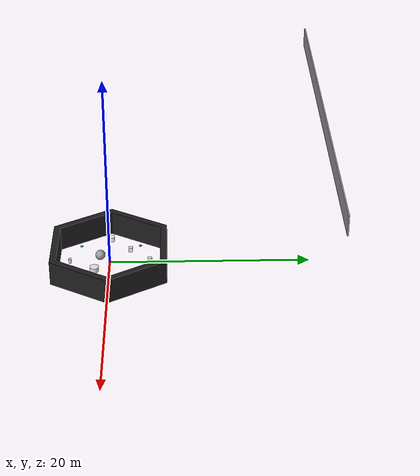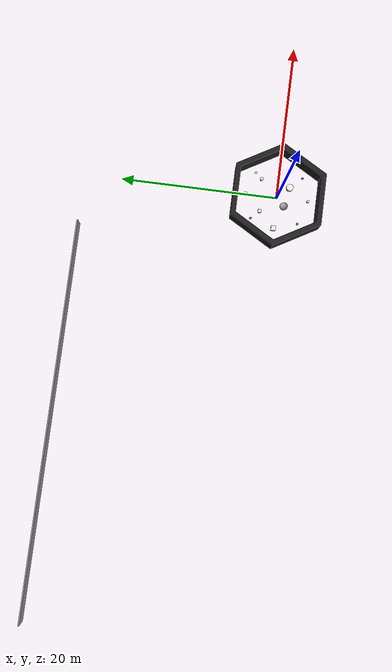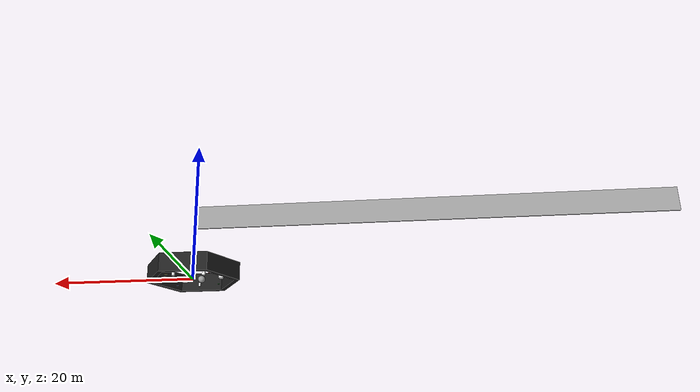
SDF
<sdf version='1.5'>
    <!-- Draw Circle -->
    <model name='ros_symbol'>
      <static>1</static>
      <link name='symbol'>

        <collision name='collision'>
          <pose>-1 -1 0.25 0 0 0</pose>
          <geometry>
            <sphere>
              <radius>0.5</radius>
            </sphere>
          </geometry>
          <max_contacts>10</max_contacts>
          <surface>
            <contact>
              <ode/>
            </contact>
            <bounce/>
            <friction>
              <torsional>
                <ode/>
              </torsional>
              <ode/>
            </friction>
          </surface>
        </collision>
        <visual name='visual'>
          <pose>-1 -1 0.25 0 0 0</pose>
          <geometry>
            <sphere>
              <radius>0.5</radius>
            </sphere>
          </geometry>
          <material>
            <script>
              <name>Gazebo/Grey</name>
              <uri>file://media/materials/scripts/gazebo.material</uri>
            </script>
          </material>
        </visual>

<collision name='Wall_3_Collision'>
          <geometry>
            <box>
              <size>50 0.15 2.5</size>
            </box>
          </geometry>
        <pose frame=''>-31.2734 24.75 0 0 -0 0</pose>
          <max_contacts>10</max_contacts>
          <surface>
            <contact>
              <ode/>
            </contact>
            <bounce/>
            <friction>
              <torsional>
                <ode/>
              </torsional>
              <ode/>
            </friction>
          </surface>
        </collision>
        <visual name='Wall_3_Visual'>
        <pose frame=''>-31.2734 24.75 0 0 -0 0</pose>
          <geometry>
            <box>
              <size>50 0.15 2.5</size>
            </box>
          </geometry>
          <material>
            <script>
              <uri>file://media/materials/scripts/gazebo.material</uri>
              <name>Gazebo/Grey</name>
            </script>
            <ambient>1 1 1 1</ambient>
          </material>
          <meta>
            <layer>0</layer>
          </meta>
        </visual>

	<!-- Obstacles to enable SLAM-->
	<collision name='slam_one'>
          <pose>-1 -1 0.25 0 0 0</pose>
          <geometry>
            <box>
            <size>0.5 0.5 0.5</size>
          </box>
          </geometry>
          <max_contacts>10</max_contacts>
          <surface>
            <bounce/>
            <friction>
              <ode/>
            </friction>
            <contact>
              <ode/>
            </contact>
          </surface>
        </collision>

        <visual name='slam_one'>
          <pose>-1 -1 0.25 0 0 0</pose>
          <geometry>
            <box>
            <size>0.5 0.5 0.5</size>
          </box>
          </geometry>
          <material>
            <script>
              <uri>file://media/materials/scripts/gazebo.material</uri>
              <name>Gazebo/White</name>
            </script>
          </material>
        </visual>

	<collision name='slam_two'>
          <pose>-2 2 0.25 0 0 0</pose>
          <geometry>
             <box>
            <size>0.4 0.4 0.5</size>
          </box>
          </geometry>
          <max_contacts>10</max_contacts>
          <surface>
            <bounce/>
            <friction>
              <ode/>
            </friction>
            <contact>
              <ode/>
            </contact>
          </surface>
        </collision>

        <visual name='slam_two'>
          <pose>-2 2 0.25 0 0 0</pose>
          <geometry>
              <box>
            <size>0.4 0.4 0.5</size>
          </box>
          </geometry>
          <material>
            <script>
              <uri>file://media/materials/scripts/gazebo.material</uri>
              <name>Gazebo/White</name>
            </script>
          </material>
        </visual>

	<collision name='slam_three'>
          <pose>1.5 -1.5 0.25 0 0 0</pose>
          <geometry>
            <cylinder>
              <radius>0.45</radius>
              <length>0.5</length>
            </cylinder>
          </geometry>
          <max_contacts>10</max_contacts>
          <surface>
            <bounce/>
            <friction>
              <ode/>
            </friction>
            <contact>
              <ode/>
            </contact>
          </surface>
        </collision>

        <visual name='slam_three'>
          <pose>1.5 -1.5 0.25 0 0 0</pose>
          <geometry>
            <cylinder>
              <radius>0.45</radius>
              <length>0.5</length>
            </cylinder>
          </geometry>
          <material>
            <script>
              <uri>file://media/materials/scripts/gazebo.material</uri>
              <name>Gazebo/White</name>
            </script>
          </material>
        </visual>

	<collision name='slam_four'>
          <pose>2.2 2.2 0.25 0 0 0</pose>
          <geometry>
            <cylinder>
              <radius>0.2</radius>
              <length>0.5</length>
            </cylinder>
          </geometry>
          <max_contacts>10</max_contacts>
          <surface>
            <bounce/>
            <friction>
              <ode/>
            </friction>
            <contact>
              <ode/>
            </contact>
          </surface>
        </collision>

        <visual name='slam_four'>
          <pose>2.2 2.2 0.25 0 0 0</pose>
          <geometry>
            <cylinder>
              <radius>0.2</radius>
              <length>0.5</length>
            </cylinder>
          </geometry>
          <material>
            <script>
              <uri>file://media/materials/scripts/gazebo.material</uri>
              <name>Gazebo/White</name>
            </script>
          </material>
        </visual>

	<collision name='slam_five'>
          <pose>4 0 0.25 0 0 0</pose>
          <geometry>
              <box>
            <size>0.3 0.3 0.5</size>
          </box>
          </geometry>
          <max_contacts>10</max_contacts>
          <surface>
            <bounce/>
            <friction>
              <ode/>
            </friction>
            <contact>
              <ode/>
            </contact>
          </surface>
        </collision>

        <visual name='slam_five'>
          <pose>4 0 0.25 0 0 0</pose>
          <geometry>
              <box>
            <size>0.3 0.3 0.5</size>
          </box>
          </geometry>
          <material>
            <script>
              <uri>file://media/materials/scripts/gazebo.material</uri>
              <name>Gazebo/White</name>
            </script>
          </material>
        </visual>

	<collision name='slam_six'>
          <pose>-4 0 0.25 0 0 0</pose>
          <geometry>
              <box>
            <size>0.6 0.6 0.5</size>
          </box>
          </geometry>
          <max_contacts>10</max_contacts>
          <surface>
            <bounce/>
            <friction>
              <ode/>
            </friction>
            <contact>
              <ode/>
            </contact>
          </surface>
        </collision>

        <visual name='slam_six'>
          <pose>-4 0 0.25 0 0 0</pose>
          <geometry>
              <box>
            <size>0.6 0.6 0.5</size>
          </box>
          </geometry>
          <material>
            <script>
              <uri>file://media/materials/scripts/gazebo.material</uri>
              <name>Gazebo/White</name>
            </script>
          </material>
        </visual>

	<collision name='slam_seven'>
          <pose>0 4 0.25 0 0 0</pose>
          <geometry>
              <box>
            <size>0.4 0.4 0.5</size>
          </box>
          </geometry>
          <max_contacts>10</max_contacts>
          <surface>
            <bounce/>
            <friction>
              <ode/>
            </friction>
            <contact>
              <ode/>
            </contact>
          </surface>
        </collision>

        <visual name='slam_seven'>
          <pose>0 4 0.25 0 0 0</pose>
          <geometry>
              <box>
            <size>0.4 0.4 0.5</size>
          </box>
          </geometry>
          <material>
            <script>
              <uri>file://media/materials/scripts/gazebo.material</uri>
              <name>Gazebo/White</name>
            </script>
          </material>
        </visual>

	<collision name='slam_eight'>
          <pose>0 -4 0.25 0 0 0</pose>
          <geometry>
            <cylinder>
              <radius>0.15</radius>
              <length>0.5</length>
            </cylinder>
          </geometry>
          <max_contacts>10</max_contacts>
          <surface>
            <bounce/>
            <friction>
              <ode/>
            </friction>
            <contact>
              <ode/>
            </contact>
          </surface>
        </collision>

        <visual name='slam_eight'>
          <pose>0 -4 0.25 0 0 0</pose>
          <geometry>
            <cylinder>
              <radius>0.15</radius>
              <length>0.5</length>
            </cylinder>
          </geometry>
          <material>
            <script>
              <uri>file://media/materials/scripts/gazebo.material</uri>
              <name>Gazebo/White</name>
            </script>
          </material>
        </visual>

	<!-- GOAL POINTS, Only visual-->
	<visual name='btm_right'>
          <pose>-3.0 -3.0 0.0 0 0 0</pose>
          <geometry>
            <cylinder>
              <radius>0.15</radius>
              <length>0.01</length>
            </cylinder>
          </geometry>
          <material>
            <script>
              <uri>file://media/materials/scripts/gazebo.material</uri>
              <name>Gazebo/Green</name>
            </script>
          </material>
        </visual>

	<visual name='btm_left'>
          <pose>-3.0 3.0 0.0 0 0 0</pose>
          <geometry>
            <cylinder>
              <radius>0.15</radius>
              <length>0.01</length>
            </cylinder>
          </geometry>
          <material>
            <script>
              <uri>file://media/materials/scripts/gazebo.material</uri>
              <name>Gazebo/Red</name>
            </script>
          </material>
        </visual>

<visual name='top_right'>
          <pose>3.0 -3.0 0.0 0 0 0</pose>
          <geometry>
            <cylinder>
              <radius>0.15</radius>
              <length>0.01</length>
            </cylinder>
          </geometry>
          <material>
            <script>
              <uri>file://media/materials/scripts/gazebo.material</uri>
              <name>Gazebo/Blue</name>
            </script>
          </material>
        </visual>

<visual name='top_left'>
          <pose>3.0 3.0 0.0 0 0 0</pose>
          <geometry>
            <cylinder>
              <radius>0.15</radius>
              <length>0.01</length>
            </cylinder>
          </geometry>
          <material>
            <script>
              <uri>file://media/materials/scripts/gazebo.material</uri>
              <name>Gazebo/Yellow</name>
            </script>
          </material>
        </visual>

        <!-- Draw Wall -->
        <collision name='body'>
        <pose>0 0 -0.3 0 0 -1.5708</pose>
        <geometry>
          <mesh>
            <uri>model://turtlebot3_world/meshes/wall.dae</uri>
            <scale>0.5 0.5 0.5</scale>
          </mesh>
        </geometry>
        <max_contacts>10</max_contacts>
        <surface>
          <bounce/>
          <friction>
            <ode/>
          </friction>
          <contact>
            <ode/>
          </contact>
        </surface>
      </collision>

      <visual name='body'>
        <pose>0 0 -0.3 0 0 -1.5708</pose>
        <geometry>
          <mesh>
            <uri>model://turtlebot3_world/meshes/wall.dae</uri>
            <scale>0.5 0.5 0.5</scale>
          </mesh>
        </geometry>
        <material>
          <script>
            <uri>file://media/materials/scripts/gazebo.material</uri>
            <name>Gazebo/Black</name>
          </script>
        </material>
      </visual>
    </link>
  </model>
</sdf>
